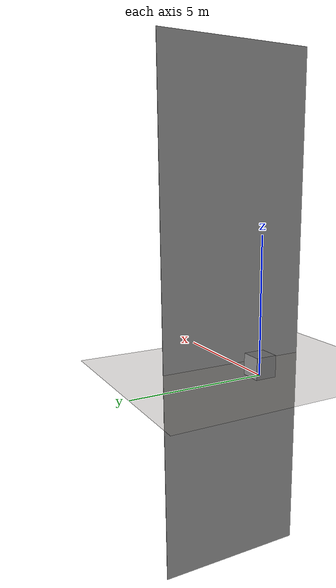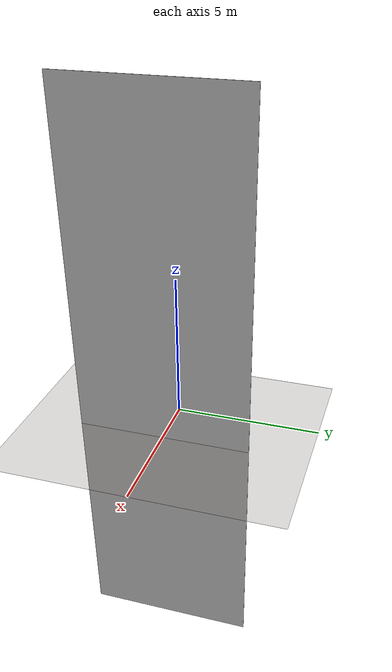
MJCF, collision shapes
<mujoco model="lab4">
  <default>
    <default class="visual">
      <geom group="2" type="mesh" contype="0" conaffinity="0"/>
    </default>
    <default class="collision">
      <geom group="3" type="mesh"/>
    </default>
  </default>
  <asset>
    <texture builtin="gradient" height="256" rgb1=".9 .9 1." rgb2=".2 .3 .4" type="skybox" width="256"/>
    <texture file="textures/tile_grigia_caldera_porcelain_floor.png" type="2d" name="texplane"/>

    <material name="floorplane" reflectance="0.0" shininess="0.0"
	      specular="0.0" texrepeat="3 3" texture="texplane" texuniform="true" rgba="0.800000 0.800000 0.800000 0.000000"/>
    <!-- ceramic table texture and material-->
    <texture file="textures/tables/dark_wood.png" type="cube" name="tex-table"/>
    <material name="table_texture" reflectance="0.0" shininess="0.0" specular="0.2" texrepeat="1 1" texture="tex-table" />
    <!-- steel legs -->
    <texture file="textures/martin_novak_wood_table.png" type="cube" name="tex-table-legs"/>
    <material name="table_legs" reflectance="0.8" shininess="0.8" texrepeat="1 1" texture="tex-table-legs" />
    <!-- plaster walls -->
    <texture file="textures/smooth_light_gray_plaster.png" type="2d" name="tex-wall"/>

    <material name="walls_mat" reflectance="0.0" shininess="0.3" specular="0.8" texrepeat="3 3" texture="tex-wall" texuniform="true" />
    <texture  name="textable" builtin="flat" height="512" width="512" rgb1="0.8 0.8 0.8" rgb2="0.8 0.8 0.8"/>
    <material name="table_mat" texture="textable" />

    <texture type="2d" name="Madeira_4334563" file="textures/lab4/Madeira_4334563.png"/>
    <material name="1_Madeira_ref" texture="Madeira_4334563" specular="0.5" shininess="0.25"/>
    <material name="1_bh6601_1_face_vidro_transparente" specular="0.5" shininess="0.36" rgba="0.800000 0.800000 0.800000 1.000000"/>
    <material name="1_bh6601_1_face_vidro_transparente.001" specular="0.5" shininess="0.36" rgba="0.800000 0.800000 0.800000 1.000000"/>
    <material name="1_bh6601_1_face_vidro_transparente.003" specular="0.5" shininess="0.36" rgba="0.800000 0.800000 0.800000 1.000000"/>
    <material name="Acrilico.001" specular="0.5" shininess="0.36" rgba="0.800000 0.800000 0.800000 1.000000"/>
    <texture type="2d" name="ALAMONT TAUPE PORCELAIN TILE_BaseColor" file="textures/lab4/ALAMONT TAUPE PORCELAIN TILE_BaseColor.png"/>
    <material name="Alamont_taupe_porcelain_tile" texture="ALAMONT TAUPE PORCELAIN TILE_BaseColor" specular="0.5" shininess="0.25"/>
    <material name="Base_planta_342352.002" specular="1.0" shininess="0.0" rgba="0.288539 0.111908 0.035378 1.000000"/>
    <material name="Black_Plastic" specular="0.5" shininess="0.25" rgba="0.011087 0.011087 0.011087 1.000000"/>
    <texture type="2d" name="Capa Livro_234235_02_BaseColor" file="textures/lab4/Capa Livro_234235_02_BaseColor.png"/>
    <material name="Book_2.002" texture="Capa Livro_234235_02_BaseColor" specular="0.267" shininess="0.705600098"/>
    <texture type="2d" name="Capa Livro_234235_03_BaseColor" file="textures/lab4/Capa Livro_234235_03_BaseColor.png"/>
    <material name="Book_3.001" texture="Capa Livro_234235_03_BaseColor" specular="0.267" shininess="0.705600098"/>
    <material name="Borracha_345" specular="0.5" shininess="0.042610054" rgba="0.022084 0.022084 0.022084 1.000000"/>
    <material name="Borracha_preta" specular="0.5" shininess="0.0" rgba="0.000000 0.000000 0.000000 1.000000"/>
    <material name="Cinza_plastico" specular="0.5" shininess="0.6742067869999999" rgba="0.078368 0.078368 0.078368 1.000000"/>
    <material name="Costela_de_adao.001" specular="0.5" shininess="0.36" rgba="0.560499 0.645555 0.505432 1.000000"/>
    <texture type="2d" name="Costela_de_adao_232423_BaseColor" file="textures/lab4/Costela_de_adao_232423_BaseColor.png"/>
    <material name="Costela_de_adao_talo.001" texture="Costela_de_adao_232423_BaseColor" specular="0.5" shininess="0.382148773"/>
    <material name="Giboia_plant" specular="0.5" shininess="0.36" rgba="0.800000 0.800000 0.800000 1.000000"/>
    <material name="Giboia_plant.001" specular="0.5" shininess="0.36" rgba="0.800000 0.800000 0.800000 1.000000"/>
    <material name="Grid_Metal.001" specular="1.0" shininess="0.5448251340000001" rgba="0.078416 0.078416 0.078416 1.0"/>
    <material name="INTERNO" specular="0.5" shininess="0.0" rgba="0.216517 0.216517 0.216517 1.000000"/>
    <texture type="2d" name="Jarro324234_Base_color" file="textures/lab4/Jarro324234_Base_color.png"/>
    <material name="Jarro34235" texture="Jarro324234_Base_color" specular="0.5" shininess="0.5"/>
    <material name="METAL" specular="0.5" shininess="1.0" rgba="0.800000 0.800000 0.800000 1.000000"/>
    <material name="METAL_DOURADO" specular="0.5" shininess="0.545429688" rgba="0.800000 0.493864 0.186553 1.000000"/>
    <material name="Material.001" specular="0.5" shininess="0.25" rgba="0.800000 0.800000 0.800000 1.000000"/>
    <texture type="2d" name="Metal545346_Base_color" file="textures/lab4/Metal545346_Base_color.png"/>
    <material name="Material.002" texture="Metal545346_Base_color" specular="0.5" shininess="0.5"/>
    <texture type="2d" name="ExitDoor323_Base_color" file="textures/lab4/ExitDoor323_Base_color.png"/>
    <material name="Material.003" texture="ExitDoor323_Base_color" specular="0.5" shininess="0.5"/>
    <texture type="2d" name="Metal545346_Base_color000" file="textures/lab4/Metal545346_Base_color000.png"/>
    <material name="Material.004" texture="Metal545346_Base_color000" specular="0.5" shininess="0.5"/>
    <material name="Material.005" specular="0.5" shininess="0.25" rgba="0.092853 0.092853 0.092853 1.000000"/>
    <material name="Material.007" specular="0.5" shininess="0.767633179" rgba="0.800000 0.800000 0.800000 1.000000"/>
    <material name="Material.009" specular="0.5" shininess="0.25" rgba="0.000000 0.000000 0.000000 1.000000"/>
    <material name="Material.010" specular="0.5" shininess="0.25" rgba="0.800000 0.020132 0.006386 1.000000"/>
    <material name="Material.012" specular="0.5" shininess="0.27828045700000004" rgba="0.512160 0.512160 0.512160 1.000000"/>
    <material name="Material.013" specular="0.5" shininess="0.25" rgba="0.010273 0.010273 0.010273 1.000000"/>
    <material name="Material.014" specular="0.5" shininess="0.36" rgba="0.800000 0.800000 0.800000 1.000000"/>
    <material name="Material.015" specular="0.5" shininess="0.25" rgba="0.057051 0.057051 0.057051 1.000000"/>
    <material name="Material.016" specular="0.5" shininess="0.5" rgba="0.800000 0.800000 0.800000 1.000000"/>
    <material name="Material.017" specular="0.5" shininess="0.25" rgba="0.000000 0.000000 0.000000 1.000000"/>
    <material name="Material_#1114.002" specular="1.0" shininess="0.2" rgba="0.500000 0.500000 0.500000 1.000000"/>
    <material name="Metal.003" specular="1.0" shininess="1.0" rgba="0.559601 0.559601 0.559601 1.000000"/>
    <material name="Metal3534" specular="1.0" shininess="0.7239456790000001" rgba="0.562962 0.562962 0.562962 1.000000"/>
    <material name="Metal_01" specular="0.5" shininess="0.8585977779999999" rgba="0.800000 0.800000 0.800000 1.000000"/>
    <material name="Metal_01.001" specular="0.5" shininess="0.467153412" rgba="0.644469 0.644469 0.644469 1.000000"/>
    <material name="Metal_01.002" specular="0.5" shininess="0.467153412" rgba="0.644469 0.644469 0.644469 1.000000"/>
    <material name="Metal_02.001" specular="0.600917" shininess="0.20623265100000002" rgba="0.433649 0.433649 0.433649 1.000000"/>
    <material name="Metal_02.002" specular="0.600917" shininess="0.20623265100000002" rgba="0.433649 0.433649 0.433649 1.000000"/>
    <material name="Metal_Arranhado_Fosco_001.003" specular="0.5" shininess="0.26851239" rgba="0.635460 0.615238 0.630369 1.000000"/>
    <material name="Metal_Branco" specular="0.5" shininess="0.442408081" rgba="0.800000 0.800000 0.800000 1.000000"/>
    <material name="Metal_Preto_fosco_345" specular="0.5" shininess="0.25" rgba="0.005332 0.005332 0.005332 1.000000"/>
    <material name="Metal_Reflexivo_345" specular="0.5" shininess="0.783793518" rgba="0.448741 0.448741 0.448741 1.000000"/>
    <material name="Metal_movel" specular="0.5" shininess="0.39214035" rgba="0.157297 0.157297 0.157297 1.000000"/>
    <material name="Metal_preto234235" specular="0.5" shininess="0.25" rgba="0.007221 0.007221 0.007221 1.000000"/>
    <material name="Metal_preto_meio_fosco2325" specular="0.5" shininess="0.629765991" rgba="0.032440 0.032440 0.032440 1.000000"/>
    <material name="Mud_and_grass" specular="0.5" shininess="0.5" rgba="0.800000 0.800000 0.800000 1.000000"/>
    <texture type="2d" name="bh_P04_Base_color" file="textures/lab4/bh_P04_Base_color.png"/>
    <material name="P04" texture="bh_P04_Base_color" specular="0.5" shininess="0.5"/>
    <material name="PRETO" specular="0.5" shininess="0.0" rgba="0.002897 0.002897 0.002897 1.000000"/>
    <texture type="2d" name="PlantaBase__3425226" file="textures/lab4/PlantaBase__3425226.png"/>
    <material name="Planta_2526.002" texture="PlantaBase__3425226" specular="1.0" shininess="0.2"/>
    <material name="Plastico_Preto" specular="0.3499999999999999" shininess="0.789542114" rgba="0.009545 0.010837 0.012608 1.000000"/>
    <material name="Plastico_preto" specular="0.5" shininess="0.08351570900000001" rgba="0.000000 0.000000 0.000000 1.000000"/>
    <material name="Plastico_preto_345" specular="0.5" shininess="0.350159912" rgba="0.019544 0.019544 0.019544 1.000000"/>
    <texture type="2d" name="Etiqueta F3d" file="textures/lab4/Etiqueta F3d.png"/>
    <material name="QR234235" texture="Etiqueta F3d" specular="0.5" shininess="0.25"/>
    <texture type="2d" name="TV23423_Base_color" file="textures/lab4/TV23423_Base_color.png"/>
    <material name="Screen_OFF" texture="TV23423_Base_color" specular="0.5" shininess="0.5"/>
    <texture type="2d" name="TV SCREEN_213242_BaseColor_ (1)" file="textures/lab4/TV SCREEN_213242_BaseColor_ (1).png"/>
    <material name="Screen_ON_Romance" texture="TV SCREEN_213242_BaseColor_ (1)" specular="0.5" shininess="0.816558777"/>
    <texture type="2d" name="TV SCREEN_213242_BaseColor_ (3)" file="textures/lab4/TV SCREEN_213242_BaseColor_ (3).png"/>
    <material name="Screen_ON_Viking" texture="TV SCREEN_213242_BaseColor_ (3)" specular="0.5" shininess="0.816558777"/>
    <texture type="2d" name="TV SCREEN_213242_BaseColor_ (4)" file="textures/lab4/TV SCREEN_213242_BaseColor_ (4).png"/>
    <material name="Screen_ON_history" texture="TV SCREEN_213242_BaseColor_ (4)" specular="0.5" shininess="0.816558777"/>
    <texture type="2d" name="TV SCREEN_213242_BaseColor_ (5)" file="textures/lab4/TV SCREEN_213242_BaseColor_ (5).png"/>
    <material name="Screen_ON_travel" texture="TV SCREEN_213242_BaseColor_ (5)" specular="0.5" shininess="0.816558777"/>
    <texture type="2d" name="TV SCREEN_213242_BaseColor_ (2)" file="textures/lab4/TV SCREEN_213242_BaseColor_ (2).png"/>
    <material name="Screen_ON_war" texture="TV SCREEN_213242_BaseColor_ (2)" specular="0.5" shininess="0.816558777"/>
    <texture type="2d" name="TV23423_Base_color" file="textures/lab4/TV23423_Base_color.png"/>
    <material name="TV23423" texture="TV23423_Base_color" specular="0.5" shininess="0.5"/>
    <texture type="2d" name="terraJarro__3425226" file="textures/lab4/terraJarro__3425226.png"/>
    <material name="Terra_vaso.002" texture="terraJarro__3425226" specular="1.0" shininess="0.2"/>
    <texture type="2d" name="Terracota01__BaseColor" file="textures/lab4/Terracota01__BaseColor.png"/>
    <material name="Terracota_01" texture="Terracota01__BaseColor" specular="0.5" shininess="0.5"/>
    <material name="Vaso.001" specular="1.0" shininess="0.717770935" rgba="0.411987 0.084465 0.017434 1.000000"/>
    <material name="Vaso.002" specular="1.0" shininess="0.717770935" rgba="0.411987 0.084465 0.017434 1.000000"/>
    <material name="Vermelho3425" specular="0.5" shininess="0.25" rgba="0.682771 0.008221 0.000000 1.000000"/>
    <material name="WATER" specular="0.5" shininess="0.36" rgba="0.800000 0.800000 0.800000 1.000000"/>
    <material name="bh0303_Madeira" specular="0.5" shininess="0.25" rgba="0.000000 0.000000 0.000000 1.000000"/>
    <texture type="2d" name="bh0507_Rig_bianco_32x60_Diffuse" file="textures/lab4/bh0507_Rig_bianco_32x60_Diffuse.png"/>
    <material name="bh0507_Rig_bianco_32x60" texture="bh0507_Rig_bianco_32x60_Diffuse" specular="0.5" shininess="0.804554565"/>
    <texture type="2d" name="bh0606_Madeira_Diffuse" file="textures/lab4/bh0606_Madeira_Diffuse.png"/>
    <material name="bh0606_Madeira.002" texture="bh0606_Madeira_Diffuse" specular="0.5" shininess="0.25"/>
    <material name="bh0707_Tecido_em_veludo.001" specular="0.5" shininess="0.0" rgba="0.800000 0.800000 0.800000 1.000000"/>
    <material name="bh0791_Madeira" specular="0.5" shininess="0.25" rgba="0.800000 0.800000 0.800000 1.000000"/>
    <material name="bh0791_Madeira.002" specular="0.5" shininess="0.25" rgba="0.800000 0.800000 0.800000 1.000000"/>
    <material name="bh0791_Madeira_porta" specular="0.5" shininess="0.25" rgba="0.800000 0.800000 0.800000 1.000000"/>
    <texture type="2d" name="bh2020_Madeita_Itapua_Diffuse" file="textures/lab4/bh2020_Madeita_Itapua_Diffuse.png"/>
    <material name="bh2020_Madeira_Itapua" texture="bh2020_Madeita_Itapua_Diffuse" specular="0.5" shininess="0.25"/>
    <material name="bh2255_Metal_escovado_blend_marcas" specular="0.5" shininess="0.36" rgba="0.800000 0.800000 0.800000 1.000000"/>
    <material name="bh2255_Metal_escovado_simples" specular="0.718182" shininess="0.7616528929999999" rgba="0.540169 0.540169 0.540169 1.000000"/>
    <material name="bh2255_Metal_escovado_simples.001" specular="0.718182" shininess="0.7616528929999999" rgba="0.540169 0.540169 0.540169 1.000000"/>
    <texture type="2d" name="bh5597_Granito_itaunas_DIffuse" file="textures/lab4/bh5597_Granito_itaunas_DIffuse.png"/>
    <material name="bh5597_Granito_itaunas" texture="bh5597_Granito_itaunas_DIffuse" specular="0.5" shininess="0.82975531"/>
    <texture type="2d" name="bh7589_Pedra_e_terra_01_DIFFUSE" file="textures/lab4/bh7589_Pedra_e_terra_01_DIFFUSE.png"/>
    <material name="bh7589_Pedra_e_terra_01" texture="bh7589_Pedra_e_terra_01_DIFFUSE" specular="0.5" shininess="0.577599976"/>
    <material name="bh7722_Metal_Arranhado" specular="0.5" shininess="0.5" rgba="0.800000 0.800000 0.800000 1.000000"/>
    <material name="bh7722_Metal_Arranhado_preto" specular="0.5" shininess="0.5" rgba="0.800000 0.800000 0.800000 1.000000"/>
    <material name="borracha_preta" specular="0.5" shininess="0.0" rgba="0.006554 0.006554 0.006554 1.000000"/>
    <material name="cable" specular="0.5" shininess="0.033722316999999995" rgba="0.010273 0.000180 0.000000 1.000000"/>
    <material name="cinza_clarinho" specular="0.5" shininess="0.25" rgba="0.522754 0.573876 0.562388 1.000000"/>
    <material name="espelho" specular="0.5" shininess="1.0" rgba="0.476221 0.391148 0.357213 1.000000"/>
    <material name="esquadria_branca" specular="0.5" shininess="0.823143738" rgba="0.376255 0.376255 0.376255 1.000000"/>
    <texture type="2d" name="Etiqueta MODELOS USA345346346" file="textures/lab4/Etiqueta MODELOS USA345346346.png"/>
    <material name="etiqueta3423425" texture="Etiqueta MODELOS USA345346346" specular="0.5" shininess="0.25"/>
    <texture type="2d" name="fogo_Diffuse_242352" file="textures/lab4/fogo_Diffuse_242352.png"/>
    <material name="fire.002" texture="fogo_Diffuse_242352" specular="1.0" shininess="0.2"/>
    <material name="glass.002" specular="0.5" shininess="0.36" rgba="0.800000 0.800000 0.800000 1.000000"/>
    <material name="laca" specular="0.5" shininess="0.25" rgba="0.860173 0.837589 0.825290 1.000000"/>
    <material name="laca_preta" specular="0.5" shininess="0.747335999" rgba="0.126398 0.039694 0.015118 1.000000"/>
    <texture type="2d" name="LATERAL_LIVRO_2342351" file="textures/lab4/LATERAL_LIVRO_2342351.png"/>
    <material name="livro_lateral.002" texture="LATERAL_LIVRO_2342351" specular="0.25" shininess="0.25"/>
    <material name="metal4235" specular="0.5" shininess="0.36" rgba="0.800000 0.800000 0.800000 1.000000"/>
    <material name="plastic_black" specular="0.5" shininess="0.011299525" rgba="0.015995 0.015995 0.015995 1.000000"/>
    <material name="plastico_preto" specular="0.5" shininess="0.25" rgba="0.051411 0.051411 0.051411 1.000000"/>
    <material name="preto_brilho" specular="0.5" shininess="1.0" rgba="0.004776 0.004776 0.004776 1.000000"/>
    <material name="preto_fosco.002" specular="1.0" shininess="0.2" rgba="0.000000 0.000000 0.000000 1.000000"/>
    <material name="qr.001" specular="0.5" shininess="0.629765991" rgba="0.032440 0.032440 0.032440 1.000000"/>
    <texture type="2d" name="Coifa_32424235_BaseColor" file="textures/lab4/Coifa_32424235_BaseColor.png"/>
    <material name="qr_coifa" texture="Coifa_32424235_BaseColor" specular="0.5" shininess="0.25"/>
    <material name="rubben" specular="0.5" shininess="0.0" rgba="0.013968 0.013968 0.013968 1.000000"/>
    <material name="talo" specular="0.5" shininess="0.25" rgba="0.032414 0.067797 0.003929 1.000000"/>
    <material name="talo.001" specular="0.5" shininess="0.25" rgba="0.032414 0.067797 0.003929 1.000000"/>
    <material name="vela.003" specular="1.0" shininess="0.2" rgba="1.000000 1.000000 1.000000 1.000000"/>
    <material name="vidro_345" specular="0.5" shininess="0.36" rgba="0.800000 0.800000 0.800000 1.000000"/>
    <material name="vidrooreflect" specular="0.5" shininess="0.36" rgba="0.800000 0.800000 0.800000 1.000000"/>
    <material name="visor24235" specular="0.5" shininess="0.36" rgba="0.800000 0.800000 0.800000 1.000000"/>
    <mesh name="kitchen3_0" file="meshes/lab4/kitchen3_0.obj"/>
    <mesh name="kitchen3_1" file="meshes/lab4/kitchen3_1.obj"/>
    <mesh name="kitchen3_2" file="meshes/lab4/kitchen3_2.obj"/>
    <mesh name="kitchen3_3" file="meshes/lab4/kitchen3_3.obj"/>
    <mesh name="kitchen3_4" file="meshes/lab4/kitchen3_4.obj"/>
    <mesh name="kitchen3_5" file="meshes/lab4/kitchen3_5.obj"/>
    <mesh name="kitchen3_6" file="meshes/lab4/kitchen3_6.obj"/>
    <mesh name="kitchen3_7" file="meshes/lab4/kitchen3_7.obj"/>
    <mesh name="kitchen3_8" file="meshes/lab4/kitchen3_8.obj"/>
    <mesh name="kitchen3_9" file="meshes/lab4/kitchen3_9.obj"/>
    <mesh name="kitchen3_10" file="meshes/lab4/kitchen3_10.obj"/>
    <mesh name="kitchen3_11" file="meshes/lab4/kitchen3_11.obj"/>
    <mesh name="kitchen3_12" file="meshes/lab4/kitchen3_12.obj"/>
    <mesh name="kitchen3_13" file="meshes/lab4/kitchen3_13.obj"/>
    <mesh name="kitchen3_14" file="meshes/lab4/kitchen3_14.obj"/>
    <mesh name="kitchen3_15" file="meshes/lab4/kitchen3_15.obj"/>
    <mesh name="kitchen3_16" file="meshes/lab4/kitchen3_16.obj"/>
    <mesh name="kitchen3_17" file="meshes/lab4/kitchen3_17.obj"/>
    <mesh name="kitchen3_18" file="meshes/lab4/kitchen3_18.obj"/>
    <mesh name="kitchen3_19" file="meshes/lab4/kitchen3_19.obj"/>
    <mesh name="kitchen3_20" file="meshes/lab4/kitchen3_20.obj"/>
    <mesh name="kitchen3_21" file="meshes/lab4/kitchen3_21.obj"/>
    <mesh name="kitchen3_22" file="meshes/lab4/kitchen3_22.obj"/>
    <mesh name="kitchen3_23" file="meshes/lab4/kitchen3_23.obj"/>
    <mesh name="kitchen3_24" file="meshes/lab4/kitchen3_24.obj"/>
    <mesh name="kitchen3_25" file="meshes/lab4/kitchen3_25.obj"/>
    <mesh name="kitchen3_26" file="meshes/lab4/kitchen3_26.obj"/>
    <mesh name="kitchen3_27" file="meshes/lab4/kitchen3_27.obj"/>
    <mesh name="kitchen3_28" file="meshes/lab4/kitchen3_28.obj"/>
    <mesh name="kitchen3_29" file="meshes/lab4/kitchen3_29.obj"/>
    <mesh name="kitchen3_30" file="meshes/lab4/kitchen3_30.obj"/>
    <mesh name="kitchen3_31" file="meshes/lab4/kitchen3_31.obj"/>
    <mesh name="kitchen3_32" file="meshes/lab4/kitchen3_32.obj"/>
    <mesh name="kitchen3_33" file="meshes/lab4/kitchen3_33.obj"/>
    <mesh name="kitchen3_34" file="meshes/lab4/kitchen3_34.obj"/>
    <mesh name="kitchen3_35" file="meshes/lab4/kitchen3_35.obj"/>
    <mesh name="kitchen3_36" file="meshes/lab4/kitchen3_36.obj"/>
    <mesh name="kitchen3_37" file="meshes/lab4/kitchen3_37.obj"/>
    <mesh name="kitchen3_38" file="meshes/lab4/kitchen3_38.obj"/>
    <mesh name="kitchen3_39" file="meshes/lab4/kitchen3_39.obj"/>
    <mesh name="kitchen3_40" file="meshes/lab4/kitchen3_40.obj"/>
    <mesh name="kitchen3_41" file="meshes/lab4/kitchen3_41.obj"/>
    <mesh name="kitchen3_42" file="meshes/lab4/kitchen3_42.obj"/>
    <mesh name="kitchen3_43" file="meshes/lab4/kitchen3_43.obj"/>
    <mesh name="kitchen3_44" file="meshes/lab4/kitchen3_44.obj"/>
    <mesh name="kitchen3_45" file="meshes/lab4/kitchen3_45.obj"/>
    <mesh name="kitchen3_46" file="meshes/lab4/kitchen3_46.obj"/>
    <mesh name="kitchen3_47" file="meshes/lab4/kitchen3_47.obj"/>
    <mesh name="kitchen3_48" file="meshes/lab4/kitchen3_48.obj"/>
    <mesh name="kitchen3_49" file="meshes/lab4/kitchen3_49.obj"/>
    <mesh name="kitchen3_50" file="meshes/lab4/kitchen3_50.obj"/>
    <mesh name="kitchen3_51" file="meshes/lab4/kitchen3_51.obj"/>
    <mesh name="kitchen3_52" file="meshes/lab4/kitchen3_52.obj"/>
    <mesh name="kitchen3_53" file="meshes/lab4/kitchen3_53.obj"/>
    <mesh name="kitchen3_54" file="meshes/lab4/kitchen3_54.obj"/>
    <mesh name="kitchen3_55" file="meshes/lab4/kitchen3_55.obj"/>
    <mesh name="kitchen3_56" file="meshes/lab4/kitchen3_56.obj"/>
    <mesh name="kitchen3_57" file="meshes/lab4/kitchen3_57.obj"/>
    <mesh name="kitchen3_58" file="meshes/lab4/kitchen3_58.obj"/>
    <mesh name="kitchen3_59" file="meshes/lab4/kitchen3_59.obj"/>
    <mesh name="kitchen3_60" file="meshes/lab4/kitchen3_60.obj"/>
    <mesh name="kitchen3_61" file="meshes/lab4/kitchen3_61.obj"/>
    <mesh name="kitchen3_62" file="meshes/lab4/kitchen3_62.obj"/>
    <mesh name="kitchen3_63" file="meshes/lab4/kitchen3_63.obj"/>
    <mesh name="kitchen3_64" file="meshes/lab4/kitchen3_64.obj"/>
    <mesh name="kitchen3_65" file="meshes/lab4/kitchen3_65.obj"/>
    <mesh name="kitchen3_66" file="meshes/lab4/kitchen3_66.obj"/>
    <mesh name="kitchen3_67" file="meshes/lab4/kitchen3_67.obj"/>
    <mesh name="kitchen3_68" file="meshes/lab4/kitchen3_68.obj"/>
    <mesh name="kitchen3_69" file="meshes/lab4/kitchen3_69.obj"/>
    <mesh name="kitchen3_70" file="meshes/lab4/kitchen3_70.obj"/>
    <mesh name="kitchen3_71" file="meshes/lab4/kitchen3_71.obj"/>
    <mesh name="kitchen3_72" file="meshes/lab4/kitchen3_72.obj"/>
    <mesh name="kitchen3_73" file="meshes/lab4/kitchen3_73.obj"/>
    <mesh name="kitchen3_74" file="meshes/lab4/kitchen3_74.obj"/>
    <mesh name="kitchen3_75" file="meshes/lab4/kitchen3_75.obj"/>
    <mesh name="kitchen3_76" file="meshes/lab4/kitchen3_76.obj"/>
    <mesh name="kitchen3_77" file="meshes/lab4/kitchen3_77.obj"/>
    <mesh name="kitchen3_78" file="meshes/lab4/kitchen3_78.obj"/>
    <mesh name="kitchen3_79" file="meshes/lab4/kitchen3_79.obj"/>
    <mesh name="kitchen3_80" file="meshes/lab4/kitchen3_80.obj"/>
    <mesh name="kitchen3_81" file="meshes/lab4/kitchen3_81.obj"/>
    <mesh name="kitchen3_82" file="meshes/lab4/kitchen3_82.obj"/>
    <mesh name="kitchen3_83" file="meshes/lab4/kitchen3_83.obj"/>
    <mesh name="kitchen3_84" file="meshes/lab4/kitchen3_84.obj"/>
    <mesh name="kitchen3_85" file="meshes/lab4/kitchen3_85.obj"/>
    <mesh name="kitchen3_86" file="meshes/lab4/kitchen3_86.obj"/>
    <mesh name="kitchen3_87" file="meshes/lab4/kitchen3_87.obj"/>
    <mesh name="kitchen3_88" file="meshes/lab4/kitchen3_88.obj"/>
    <mesh name="kitchen3_89" file="meshes/lab4/kitchen3_89.obj"/>
    <mesh name="kitchen3_90" file="meshes/lab4/kitchen3_90.obj"/>
    <mesh name="kitchen3_91" file="meshes/lab4/kitchen3_91.obj"/>
    <mesh name="kitchen3_92" file="meshes/lab4/kitchen3_92.obj"/>
    <mesh name="kitchen3_93" file="meshes/lab4/kitchen3_93.obj"/>
    <mesh name="kitchen3_94" file="meshes/lab4/kitchen3_94.obj"/>
    <mesh name="kitchen3_95" file="meshes/lab4/kitchen3_95.obj"/>
    <mesh name="kitchen3_96" file="meshes/lab4/kitchen3_96.obj"/>
    <mesh name="kitchen3_97" file="meshes/lab4/kitchen3_97.obj"/>

  </asset>
  <worldbody>

    <geom mesh="kitchen3_0" material="plastic_black" class="visual"/>
    <geom mesh="kitchen3_1" material="Cinza_plastico" class="visual"/>
    <geom mesh="kitchen3_2" material="bh2255_Metal_escovado_simples.001" class="visual"/>
    <geom mesh="kitchen3_3" material="Vermelho3425" class="visual"/>
    <geom mesh="kitchen3_4" material="Plastico_preto" class="visual"/>
    <geom mesh="kitchen3_5" material="Borracha_preta" class="visual"/>
    <geom mesh="kitchen3_6" material="esquadria_branca" class="visual"/>
    <geom mesh="kitchen3_7" material="1_bh6601_1_face_vidro_transparente.003" class="visual"/>
    <geom mesh="kitchen3_8" material="Material.005" class="visual"/>
    <geom mesh="kitchen3_9" material="Metal_02.002" class="visual"/>
    <geom mesh="kitchen3_10" material="Metal_01.002" class="visual"/>
    <geom mesh="kitchen3_11" material="bh0791_Madeira_porta" class="visual"/>
    <geom mesh="kitchen3_12" material="Material.002" class="visual"/>
    <geom mesh="kitchen3_13" material="1_bh6601_1_face_vidro_transparente" class="visual"/>
    <geom mesh="kitchen3_14" material="PRETO" class="visual"/>
    <geom mesh="kitchen3_15" material="Material.003" class="visual"/>
    <geom mesh="kitchen3_16" material="Metal_Branco" class="visual"/>
    <geom mesh="kitchen3_17" material="Metal_01" class="visual"/>
    <geom mesh="kitchen3_18" material="Alamont_taupe_porcelain_tile" class="visual"/>
    <geom mesh="kitchen3_19" material="Material.001" class="visual"/>
    <geom mesh="kitchen3_20" material="Material.017" class="visual"/>
    <geom mesh="kitchen3_21" material="espelho" class="visual"/>
    <geom mesh="kitchen3_22" material="laca" class="visual"/>
    <geom mesh="kitchen3_23" material="Material.016" class="visual"/>
    <geom mesh="kitchen3_24" material="bh7589_Pedra_e_terra_01" class="visual"/>
    <geom mesh="kitchen3_25" material="Giboia_plant.001" class="visual"/>
    <geom mesh="kitchen3_26" material="rubben" class="visual"/>
    <geom mesh="kitchen3_27" material="QR234235" class="visual"/>
    <geom mesh="kitchen3_28" material="bh2020_Madeira_Itapua" class="visual"/>
    <geom mesh="kitchen3_29" material="talo.001" class="visual"/>
    <geom mesh="kitchen3_30" material="Terracota_01" class="visual"/>
    <geom mesh="kitchen3_31" material="Costela_de_adao_talo.001" class="visual"/>
    <geom mesh="kitchen3_32" material="Costela_de_adao.001" class="visual"/>
    <geom mesh="kitchen3_33" material="bh7722_Metal_Arranhado_preto" class="visual"/>
    <geom mesh="kitchen3_34" material="Giboia_plant" class="visual"/>
    <geom mesh="kitchen3_35" material="talo" class="visual"/>
    <geom mesh="kitchen3_36" material="Jarro34235" class="visual"/>
    <geom mesh="kitchen3_37" material="Mud_and_grass" class="visual"/>
    <geom mesh="kitchen3_38" material="METAL" class="visual"/>
    <geom mesh="kitchen3_39" material="Acrilico.001" class="visual"/>
    <geom mesh="kitchen3_40" material="etiqueta3423425" class="visual"/>
    <geom mesh="kitchen3_41" material="Black_Plastic" class="visual"/>
    <geom mesh="kitchen3_42" material="METAL_DOURADO" class="visual"/>
    <geom mesh="kitchen3_43" material="bh0707_Tecido_em_veludo.001" class="visual"/>
    <geom mesh="kitchen3_44" material="TV23423" class="visual"/>
    <geom mesh="kitchen3_45" material="Screen_OFF" class="visual"/>
    <geom mesh="kitchen3_46" material="Metal_preto234235" class="visual"/>
    <geom mesh="kitchen3_47" material="borracha_preta" class="visual"/>
    <geom mesh="kitchen3_48" material="P04" class="visual"/>
    <geom mesh="kitchen3_49" material="bh0791_Madeira.002" class="visual"/>
    <geom mesh="kitchen3_50" material="bh0606_Madeira.002" class="visual"/>
    <geom mesh="kitchen3_51" material="Vaso.001" class="visual"/>
    <geom mesh="kitchen3_52" material="Base_planta_342352.002" class="visual"/>
    <geom mesh="kitchen3_53" material="Vaso.002" class="visual"/>
    <geom mesh="kitchen3_54" material="Terra_vaso.002" class="visual"/>
    <geom mesh="kitchen3_55" material="Planta_2526.002" class="visual"/>
    <geom mesh="kitchen3_56" material="Metal.003" class="visual"/>
    <geom mesh="kitchen3_57" material="fire.002" class="visual"/>
    <geom mesh="kitchen3_58" material="preto_fosco.002" class="visual"/>
    <geom mesh="kitchen3_59" material="vela.003" class="visual"/>
    <geom mesh="kitchen3_60" material="Material_#1114.002" class="visual"/>
    <geom mesh="kitchen3_61" material="Book_3.001" class="visual"/>
    <geom mesh="kitchen3_62" material="livro_lateral.002" class="visual"/>
    <geom mesh="kitchen3_63" material="Book_2.002" class="visual"/>
    <geom mesh="kitchen3_64" material="glass.002" class="visual"/>
    <geom mesh="kitchen3_65" material="laca_preta" class="visual"/>
    <geom mesh="kitchen3_66" material="Metal_movel" class="visual"/>
    <geom mesh="kitchen3_67" material="vidrooreflect" class="visual"/>
    <geom mesh="kitchen3_68" material="Metal_Arranhado_Fosco_001.003" class="visual"/>
    <geom mesh="kitchen3_69" material="Material.014" class="visual"/>
    <geom mesh="kitchen3_70" material="Grid_Metal.001" class="visual"/>
    <geom mesh="kitchen3_71" material="qr_coifa" class="visual"/>
    <geom mesh="kitchen3_72" material="INTERNO" class="visual"/>
    <geom mesh="kitchen3_73" material="bh7722_Metal_Arranhado" class="visual"/>
    <geom mesh="kitchen3_74" material="qr.001" class="visual"/>
    <geom mesh="kitchen3_75" material="Metal_preto_meio_fosco2325" class="visual"/>
    <geom mesh="kitchen3_76" material="bh2255_Metal_escovado_simples" class="visual"/>
    <geom mesh="kitchen3_77" material="Material.013" class="visual"/>
    <geom mesh="kitchen3_78" material="vidro_345" class="visual"/>
    <geom mesh="kitchen3_79" material="visor24235" class="visual"/>
    <geom mesh="kitchen3_80" material="bh2255_Metal_escovado_blend_marcas" class="visual"/>
    <geom mesh="kitchen3_81" material="1_bh6601_1_face_vidro_transparente.001" class="visual"/>
    <geom mesh="kitchen3_82" material="preto_brilho" class="visual"/>
    <geom mesh="kitchen3_83" material="metal4235" class="visual"/>
    <geom mesh="kitchen3_84" material="Metal_Reflexivo_345" class="visual"/>
    <geom mesh="kitchen3_85" material="Metal_Preto_fosco_345" class="visual"/>
    <geom mesh="kitchen3_86" material="Material.012" class="visual"/>
    <geom mesh="kitchen3_87" material="Borracha_345" class="visual"/>
    <geom mesh="kitchen3_88" material="Plastico_preto_345" class="visual"/>
    <geom mesh="kitchen3_89" material="Material.010" class="visual"/>
    <geom mesh="kitchen3_90" material="Plastico_Preto" class="visual"/>
    <geom mesh="kitchen3_91" material="cable" class="visual"/>
    <geom mesh="kitchen3_92" material="plastico_preto" class="visual"/>
    <geom mesh="kitchen3_93" material="Material.009" class="visual"/>
    <geom mesh="kitchen3_94" material="Metal3534" class="visual"/>
    <geom mesh="kitchen3_95" material="bh5597_Granito_itaunas" class="visual"/>
    <geom mesh="kitchen3_96" material="bh0791_Madeira" class="visual"/>
    <geom mesh="kitchen3_97" material="bh0507_Rig_bianco_32x60" class="visual"/>

    <light name="light_kitchen" diffuse=".8 .8 .8" dir="0 0 -1" directional="true" pos="-1.75 0 1.6" specular="0.8 0.8 0.8" castshadow="false"/>
    <geom condim="3" group="1" material="floorplane" name="floor" pos="0 0 0" size="5 5 .125" type="plane"/>

    <geom pos="1.75 0 1.5" quat="0.5 0.5 -0.5 -0.5" size="3 10 0.01" type="box" conaffinity="0" contype="0" group="1" name="wall_front_visual" material="Metal3534"/>

    <body name="table" pos="0 0 0.4">
      <geom pos="0 0 0" size="0.4 0.4 0.4" type="box" group="0" name="table_collision" friction="1 0.005 0.0001"/>
      <geom pos="0 0 0" size="0.4 0.4 0.4" type="box" conaffinity="0" contype="0" group="1" name="table_visual" material="table_texture"/>
      <site pos="0 0 0.4" name="table_top" size="0.001 0.001 0.001" rgba="0 0 0 0"/>
      <!-- Legs (visual only) -->
      <geom pos="0 0 0" size="0.05 0.1" type="cylinder" conaffinity="0" contype="0" group="1" name="table_leg1_visual" material="table_legs"/>
      <geom pos="0 0 0" size="0.05 0.1" type="cylinder" conaffinity="0" contype="0" group="1" name="table_leg2_visual" material="table_legs"/>
      <geom pos="0 0 0" size="0.05 0.1" type="cylinder" conaffinity="0" contype="0" group="1" name="table_leg3_visual" material="table_legs"/>
      <geom pos="0 0 0" size="0.05 0.1" type="cylinder" conaffinity="0" contype="0" group="1" name="table_leg4_visual" material="table_legs"/>
    </body>

    <light name="light1" diffuse=".8 .8 .8" dir="0 -.15 -1" directional="false" pos="1 1 4.0" specular="0.3 0.3 0.3" castshadow="false"/>
    <light name="light2" diffuse=".8 .8 .8" dir="0 -.15 -1" directional="false" pos="-3. -3. 4.0" specular="0.3 0.3 0.3" castshadow="false"/>

    <!-- front view -->
    <camera mode="fixed" name="frontview" pos="1.0 0 1.45" quat="0.56 0.43 0.43 0.56"/>
    <!-- bird view -->
    <camera mode="fixed" name="birdview" pos="-0.2 0 3.0" quat="0.7071 0 0 0.7071"/>
    <!-- agent view -->
    <camera mode="fixed" name="agentview" pos="0.5 0 1.35" quat="0.653 0.271 0.271 0.653"/>

    <!-- side view -->
    <camera mode="fixed" name="sideview" pos="-0.05651774593317116 1.2761224129427358 -1.4879572214102434" quat="0.009905065491771751 0.006877963156909582 0.5912228352893879 0.806418094001364" />

  </worldbody>
</mujoco>
